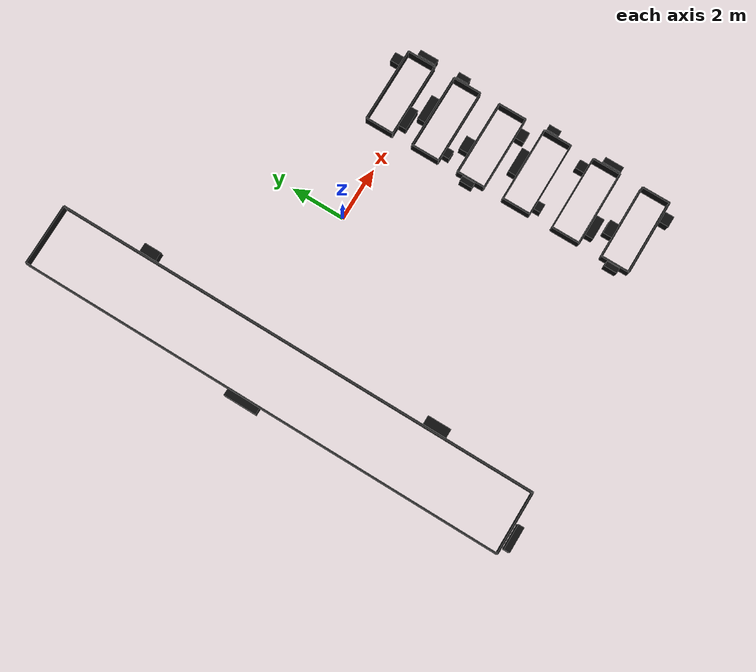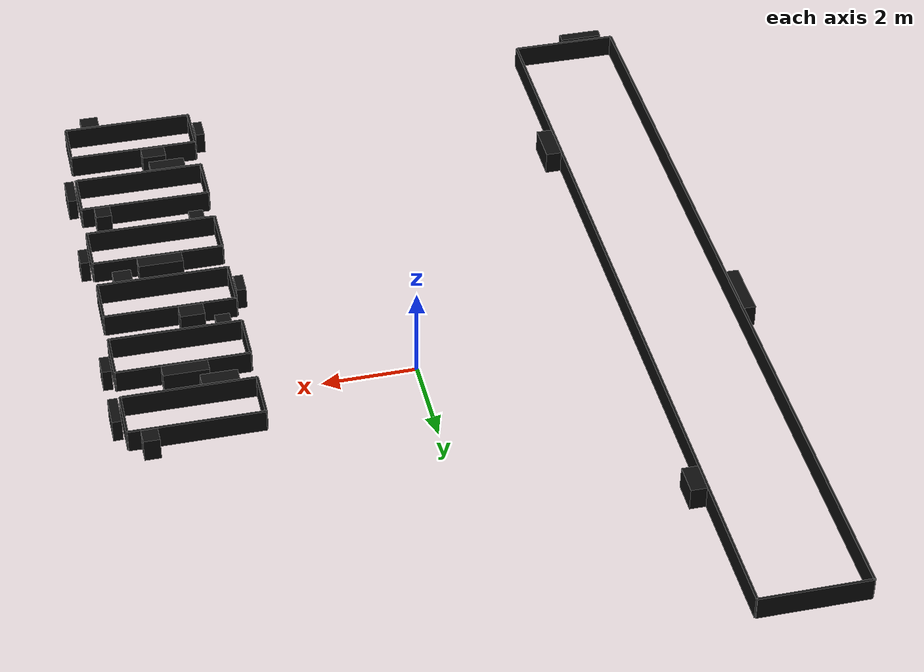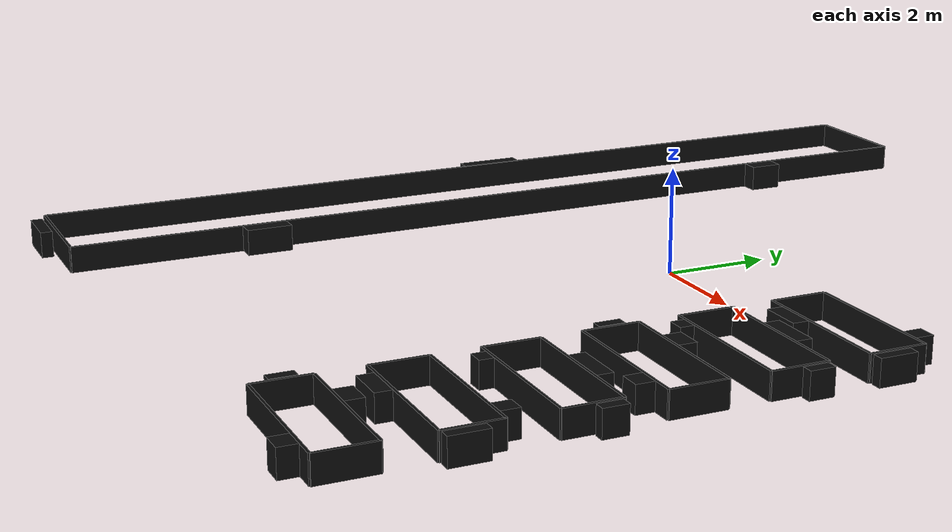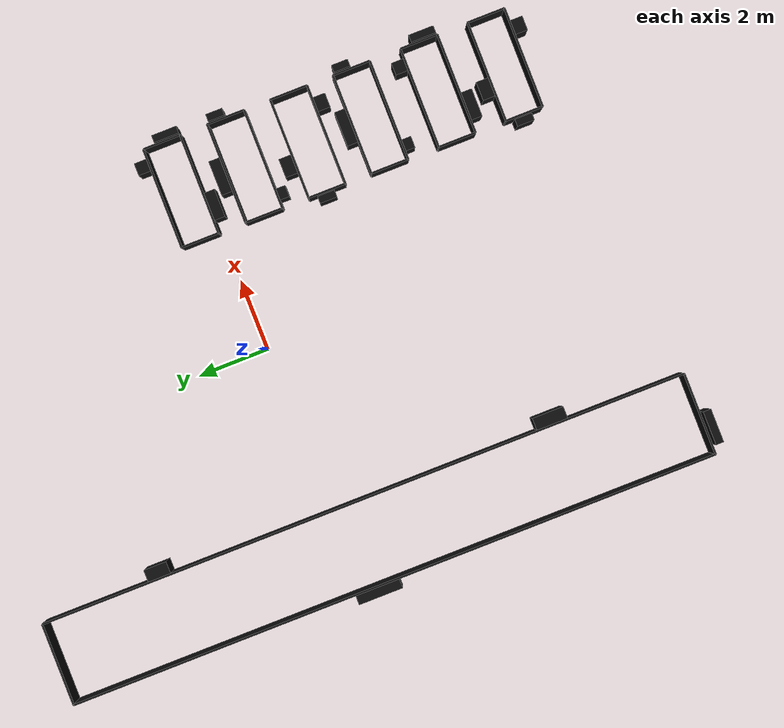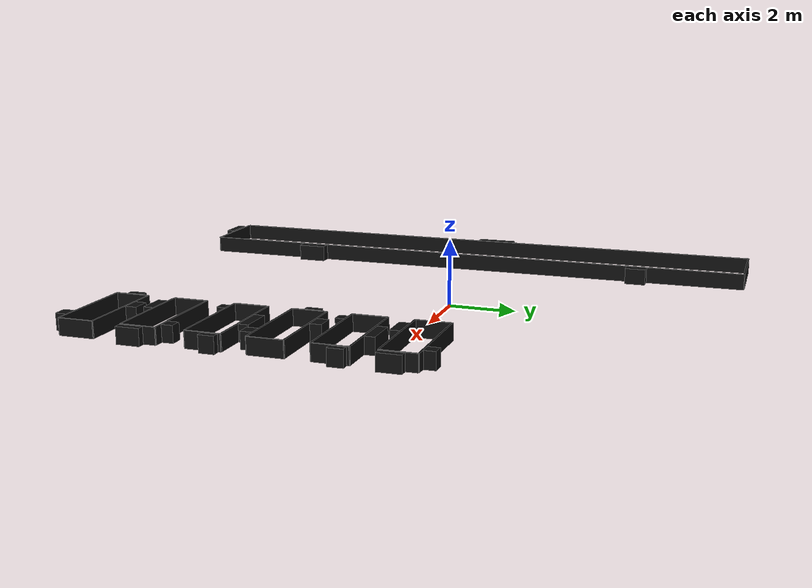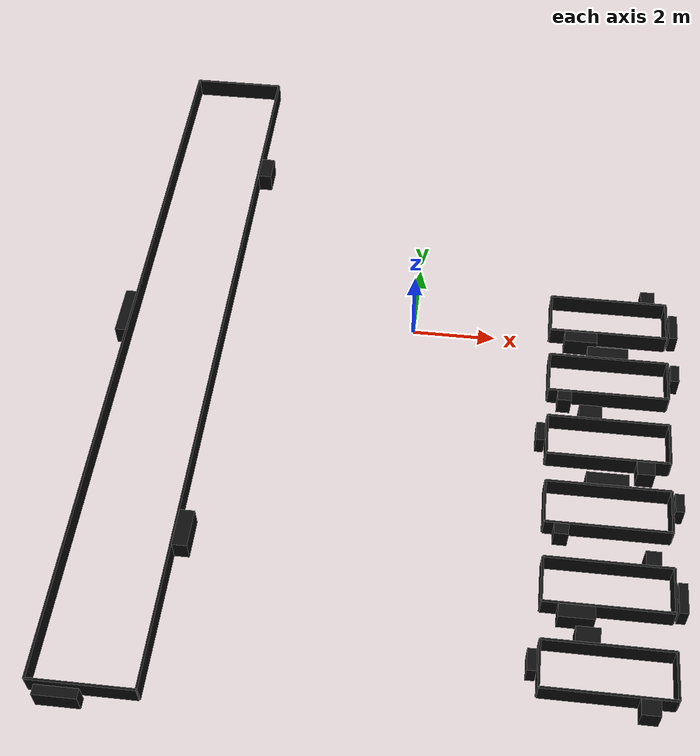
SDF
<sdf version="1.9">
 <world name="no_roof_small_warehouse">
  <plugin filename="gz-sim-physics-system" name="gz::sim::systems::Physics"/>
  <plugin filename="gz-sim-scene-broadcaster-system" name="gz::sim::systems::SceneBroadcaster"/>
  <plugin filename="gz-sim-user-commands-system" name="gz::sim::systems::UserCommands"/>
  <plugin filename="gz-sim-sensors-system" name="gz::sim::systems::Sensors">
   <render_engine>ogre2</render_engine>
  </plugin>
  <gravity>0 0 -9.8</gravity>
  <physics name="default_physics" type="ode">
   <max_step_size>0.01</max_step_size>
   <real_time_factor>1</real_time_factor>
   <real_time_update_rate>100</real_time_update_rate>
  </physics>
  <scene><ambient>0.4 0.4 0.4 1</ambient><background>0.7 0.7 0.7 1</background></scene>
  <model name="aws_robomaker_warehouse_ShelfF_01_001_lidar_blocker">
   <include><uri>model://warehouse_lidar_blocker_long_b</uri></include>
   <pose>-5.795143 -0.956635 0 0 0 0</pose>
  </model>
  <model name="aws_robomaker_warehouse_ShelfE_01_001_lidar_blocker">
   <include><uri>model://warehouse_lidar_blocker_short_b</uri></include>
   <pose>4.73156 0.57943 0 0 0 1.5708</pose>
  </model>
  <model name="aws_robomaker_warehouse_ShelfE_01_002_lidar_blocker">
   <include><uri>model://warehouse_lidar_blocker_short_c</uri></include>
   <pose>4.73156 -4.827049 0 0 0 1.5708</pose>
  </model>
  <model name="aws_robomaker_warehouse_ShelfE_01_003_lidar_blocker">
   <include><uri>model://warehouse_lidar_blocker_short</uri></include>
   <pose>4.73156 -8.6651 0 0 0 1.5708</pose>
  </model>
  <model name="aws_robomaker_warehouse_ShelfD_01_001_lidar_blocker">
   <include><uri>model://warehouse_lidar_blocker_short_c</uri></include>
   <pose>4.73156 -1.242668 0 0 0 1.5708</pose>
  </model>
  <model name="aws_robomaker_warehouse_ShelfD_01_002_lidar_blocker">
   <include><uri>model://warehouse_lidar_blocker_short</uri></include>
   <pose>4.73156 -3.038551 0 0 0 1.5708</pose>
  </model>
  <model name="aws_robomaker_warehouse_ShelfD_01_003_lidar_blocker">
   <include><uri>model://warehouse_lidar_blocker_short_b</uri></include>
   <pose>4.73156 -6.750542 0 0 0 1.5708</pose>
  </model>
  <light name="Warehouse_CeilingLight_003" type="point">
   <pose>0 0 9 0 0 0</pose>
   <diffuse>0.5 0.5 0.5 1</diffuse>
   <specular>0.2 0.2 0.2 1</specular>
   <attenuation>
    <range>80</range>
    <constant>0.3</constant>
    <linear>0.01</linear>
    <quadratic>0.001</quadratic>
   </attenuation>
   <direction>0.1 0.1 -1</direction>
  </light>
 </world>
</sdf>

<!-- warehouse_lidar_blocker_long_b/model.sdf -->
<sdf version="1.6">
  <model name="warehouse_lidar_blocker_long_b">
    <static>true</static>
    <link name="link">
      <collision name="x_min_lidar_rail_collision">
        <pose>-1.15 0 0.25 0 0 0</pose>
        <geometry><box><size>0.05 18.30 0.50</size></box></geometry>
      </collision>
      <collision name="x_max_lidar_rail_collision">
        <pose>1.15 0 0.25 0 0 0</pose>
        <geometry><box><size>0.05 18.30 0.50</size></box></geometry>
      </collision>
      <collision name="y_min_lidar_rail_collision">
        <pose>0 -9.15 0.25 0 0 0</pose>
        <geometry><box><size>2.30 0.05 0.50</size></box></geometry>
      </collision>
      <collision name="y_max_lidar_rail_collision">
        <pose>0 9.15 0.25 0 0 0</pose>
        <geometry><box><size>2.30 0.05 0.50</size></box></geometry>
      </collision>
      <collision name="east_marker_low_collision">
        <pose>1.34 -5.40 0.25 0 0 0</pose>
        <geometry><box><size>0.34 0.88 0.50</size></box></geometry>
      </collision>
      <collision name="west_marker_mid_collision">
        <pose>-1.30 0.50 0.25 0 0 0</pose>
        <geometry><box><size>0.26 1.24 0.50</size></box></geometry>
      </collision>
      <collision name="east_marker_high_collision">
        <pose>1.34 5.80 0.25 0 0 0</pose>
        <geometry><box><size>0.34 0.64 0.50</size></box></geometry>
      </collision>
      <collision name="south_marker_collision">
        <pose>-0.45 -9.36 0.25 0 0 0</pose>
        <geometry><box><size>0.94 0.22 0.50</size></box></geometry>
      </collision>
      <visual name="x_min_lidar_rail">
        <pose>-1.15 0 0.25 0 0 0</pose>
        <cast_shadows>false</cast_shadows>
        <geometry><box><size>0.05 18.30 0.50</size></box></geometry>
        <material><ambient>0.03 0.03 0.03 1</ambient><diffuse>0.05 0.05 0.05 1</diffuse></material>
      </visual>
      <visual name="x_max_lidar_rail">
        <pose>1.15 0 0.25 0 0 0</pose>
        <cast_shadows>false</cast_shadows>
        <geometry><box><size>0.05 18.30 0.50</size></box></geometry>
        <material><ambient>0.03 0.03 0.03 1</ambient><diffuse>0.05 0.05 0.05 1</diffuse></material>
      </visual>
      <visual name="y_min_lidar_rail">
        <pose>0 -9.15 0.25 0 0 0</pose>
        <cast_shadows>false</cast_shadows>
        <geometry><box><size>2.30 0.05 0.50</size></box></geometry>
        <material><ambient>0.03 0.03 0.03 1</ambient><diffuse>0.05 0.05 0.05 1</diffuse></material>
      </visual>
      <visual name="y_max_lidar_rail">
        <pose>0 9.15 0.25 0 0 0</pose>
        <cast_shadows>false</cast_shadows>
        <geometry><box><size>2.30 0.05 0.50</size></box></geometry>
        <material><ambient>0.03 0.03 0.03 1</ambient><diffuse>0.05 0.05 0.05 1</diffuse></material>
      </visual>
      <visual name="east_marker_low">
        <pose>1.34 -5.40 0.25 0 0 0</pose>
        <cast_shadows>false</cast_shadows>
        <geometry><box><size>0.34 0.88 0.50</size></box></geometry>
        <material><ambient>0.03 0.03 0.03 1</ambient><diffuse>0.05 0.05 0.05 1</diffuse></material>
      </visual>
      <visual name="west_marker_mid">
        <pose>-1.30 0.50 0.25 0 0 0</pose>
        <cast_shadows>false</cast_shadows>
        <geometry><box><size>0.26 1.24 0.50</size></box></geometry>
        <material><ambient>0.03 0.03 0.03 1</ambient><diffuse>0.05 0.05 0.05 1</diffuse></material>
      </visual>
      <visual name="east_marker_high">
        <pose>1.34 5.80 0.25 0 0 0</pose>
        <cast_shadows>false</cast_shadows>
        <geometry><box><size>0.34 0.64 0.50</size></box></geometry>
        <material><ambient>0.03 0.03 0.03 1</ambient><diffuse>0.05 0.05 0.05 1</diffuse></material>
      </visual>
      <visual name="south_marker">
        <pose>-0.45 -9.36 0.25 0 0 0</pose>
        <cast_shadows>false</cast_shadows>
        <geometry><box><size>0.94 0.22 0.50</size></box></geometry>
        <material><ambient>0.03 0.03 0.03 1</ambient><diffuse>0.05 0.05 0.05 1</diffuse></material>
      </visual>
    </link>
  </model>
</sdf>

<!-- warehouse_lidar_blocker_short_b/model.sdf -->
<sdf version="1.6">
  <model name="warehouse_lidar_blocker_short_b">
    <static>true</static>
    <link name="link">
      <collision name="x_min_lidar_rail_collision">
        <pose>-0.525 0 0.25 0 0 0</pose>
        <geometry><box><size>0.05 2.80 0.50</size></box></geometry>
      </collision>
      <collision name="x_max_lidar_rail_collision">
        <pose>0.525 0 0.25 0 0 0</pose>
        <geometry><box><size>0.05 2.80 0.50</size></box></geometry>
      </collision>
      <collision name="y_min_lidar_rail_collision">
        <pose>0 -1.40 0.25 0 0 0</pose>
        <geometry><box><size>1.05 0.05 0.50</size></box></geometry>
      </collision>
      <collision name="y_max_lidar_rail_collision">
        <pose>0 1.40 0.25 0 0 0</pose>
        <geometry><box><size>1.05 0.05 0.50</size></box></geometry>
      </collision>
      <collision name="west_marker_collision">
        <pose>-0.70 0.66 0.25 0 0 0</pose>
        <geometry><box><size>0.30 0.78 0.50</size></box></geometry>
      </collision>
      <collision name="south_marker_collision">
        <pose>-0.16 -1.56 0.25 0 0 0</pose>
        <geometry><box><size>0.70 0.20 0.50</size></box></geometry>
      </collision>
      <collision name="east_marker_collision">
        <pose>0.72 -0.96 0.25 0 0 0</pose>
        <geometry><box><size>0.34 0.34 0.50</size></box></geometry>
      </collision>
      <visual name="x_min_lidar_rail">
        <pose>-0.525 0 0.25 0 0 0</pose>
        <cast_shadows>false</cast_shadows>
        <geometry><box><size>0.05 2.80 0.50</size></box></geometry>
        <material><ambient>0.03 0.03 0.03 1</ambient><diffuse>0.05 0.05 0.05 1</diffuse></material>
      </visual>
      <visual name="x_max_lidar_rail">
        <pose>0.525 0 0.25 0 0 0</pose>
        <cast_shadows>false</cast_shadows>
        <geometry><box><size>0.05 2.80 0.50</size></box></geometry>
        <material><ambient>0.03 0.03 0.03 1</ambient><diffuse>0.05 0.05 0.05 1</diffuse></material>
      </visual>
      <visual name="y_min_lidar_rail">
        <pose>0 -1.40 0.25 0 0 0</pose>
        <cast_shadows>false</cast_shadows>
        <geometry><box><size>1.05 0.05 0.50</size></box></geometry>
        <material><ambient>0.03 0.03 0.03 1</ambient><diffuse>0.05 0.05 0.05 1</diffuse></material>
      </visual>
      <visual name="y_max_lidar_rail">
        <pose>0 1.40 0.25 0 0 0</pose>
        <cast_shadows>false</cast_shadows>
        <geometry><box><size>1.05 0.05 0.50</size></box></geometry>
        <material><ambient>0.03 0.03 0.03 1</ambient><diffuse>0.05 0.05 0.05 1</diffuse></material>
      </visual>
      <visual name="west_marker">
        <pose>-0.70 0.66 0.25 0 0 0</pose>
        <cast_shadows>false</cast_shadows>
        <geometry><box><size>0.30 0.78 0.50</size></box></geometry>
        <material><ambient>0.03 0.03 0.03 1</ambient><diffuse>0.05 0.05 0.05 1</diffuse></material>
      </visual>
      <visual name="south_marker">
        <pose>-0.16 -1.56 0.25 0 0 0</pose>
        <cast_shadows>false</cast_shadows>
        <geometry><box><size>0.70 0.20 0.50</size></box></geometry>
        <material><ambient>0.03 0.03 0.03 1</ambient><diffuse>0.05 0.05 0.05 1</diffuse></material>
      </visual>
      <visual name="east_marker">
        <pose>0.72 -0.96 0.25 0 0 0</pose>
        <cast_shadows>false</cast_shadows>
        <geometry><box><size>0.34 0.34 0.50</size></box></geometry>
        <material><ambient>0.03 0.03 0.03 1</ambient><diffuse>0.05 0.05 0.05 1</diffuse></material>
      </visual>
    </link>
  </model>
</sdf>

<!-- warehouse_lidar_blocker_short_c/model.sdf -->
<sdf version="1.6">
  <model name="warehouse_lidar_blocker_short_c">
    <static>true</static>
    <link name="link">
      <collision name="x_min_lidar_rail_collision">
        <pose>-0.525 0 0.25 0 0 0</pose>
        <geometry><box><size>0.05 2.80 0.50</size></box></geometry>
      </collision>
      <collision name="x_max_lidar_rail_collision">
        <pose>0.525 0 0.25 0 0 0</pose>
        <geometry><box><size>0.05 2.80 0.50</size></box></geometry>
      </collision>
      <collision name="y_min_lidar_rail_collision">
        <pose>0 -1.40 0.25 0 0 0</pose>
        <geometry><box><size>1.05 0.05 0.50</size></box></geometry>
      </collision>
      <collision name="y_max_lidar_rail_collision">
        <pose>0 1.40 0.25 0 0 0</pose>
        <geometry><box><size>1.05 0.05 0.50</size></box></geometry>
      </collision>
      <collision name="east_marker_collision">
        <pose>0.70 0.02 0.25 0 0 0</pose>
        <geometry><box><size>0.30 0.96 0.50</size></box></geometry>
      </collision>
      <collision name="west_marker_collision">
        <pose>-0.68 1.02 0.25 0 0 0</pose>
        <geometry><box><size>0.26 0.32 0.50</size></box></geometry>
      </collision>
      <collision name="south_marker_collision">
        <pose>0.24 -1.56 0.25 0 0 0</pose>
        <geometry><box><size>0.46 0.20 0.50</size></box></geometry>
      </collision>
      <visual name="x_min_lidar_rail">
        <pose>-0.525 0 0.25 0 0 0</pose>
        <cast_shadows>false</cast_shadows>
        <geometry><box><size>0.05 2.80 0.50</size></box></geometry>
        <material><ambient>0.03 0.03 0.03 1</ambient><diffuse>0.05 0.05 0.05 1</diffuse></material>
      </visual>
      <visual name="x_max_lidar_rail">
        <pose>0.525 0 0.25 0 0 0</pose>
        <cast_shadows>false</cast_shadows>
        <geometry><box><size>0.05 2.80 0.50</size></box></geometry>
        <material><ambient>0.03 0.03 0.03 1</ambient><diffuse>0.05 0.05 0.05 1</diffuse></material>
      </visual>
      <visual name="y_min_lidar_rail">
        <pose>0 -1.40 0.25 0 0 0</pose>
        <cast_shadows>false</cast_shadows>
        <geometry><box><size>1.05 0.05 0.50</size></box></geometry>
        <material><ambient>0.03 0.03 0.03 1</ambient><diffuse>0.05 0.05 0.05 1</diffuse></material>
      </visual>
      <visual name="y_max_lidar_rail">
        <pose>0 1.40 0.25 0 0 0</pose>
        <cast_shadows>false</cast_shadows>
        <geometry><box><size>1.05 0.05 0.50</size></box></geometry>
        <material><ambient>0.03 0.03 0.03 1</ambient><diffuse>0.05 0.05 0.05 1</diffuse></material>
      </visual>
      <visual name="east_marker">
        <pose>0.70 0.02 0.25 0 0 0</pose>
        <cast_shadows>false</cast_shadows>
        <geometry><box><size>0.30 0.96 0.50</size></box></geometry>
        <material><ambient>0.03 0.03 0.03 1</ambient><diffuse>0.05 0.05 0.05 1</diffuse></material>
      </visual>
      <visual name="west_marker">
        <pose>-0.68 1.02 0.25 0 0 0</pose>
        <cast_shadows>false</cast_shadows>
        <geometry><box><size>0.26 0.32 0.50</size></box></geometry>
        <material><ambient>0.03 0.03 0.03 1</ambient><diffuse>0.05 0.05 0.05 1</diffuse></material>
      </visual>
      <visual name="south_marker">
        <pose>0.24 -1.56 0.25 0 0 0</pose>
        <cast_shadows>false</cast_shadows>
        <geometry><box><size>0.46 0.20 0.50</size></box></geometry>
        <material><ambient>0.03 0.03 0.03 1</ambient><diffuse>0.05 0.05 0.05 1</diffuse></material>
      </visual>
    </link>
  </model>
</sdf>

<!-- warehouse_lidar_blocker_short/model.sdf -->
<sdf version="1.6">
  <model name="warehouse_lidar_blocker_short">
    <static>true</static>
    <link name="link">
      <!-- Keep the shelf footprint lidar-visible, but put the distinguishing
           features on the OUTSIDE of the rack so they are actually visible to
           the scanner from the aisle. -->
      <collision name="x_min_lidar_rail_collision">
        <pose>-0.525 0 0.25 0 0 0</pose>
        <geometry>
          <box>
            <size>0.05 2.80 0.50</size>
          </box>
        </geometry>
      </collision>
      <collision name="x_max_lidar_rail_collision">
        <pose>0.525 0 0.25 0 0 0</pose>
        <geometry>
          <box>
            <size>0.05 2.80 0.50</size>
          </box>
        </geometry>
      </collision>
      <collision name="y_min_lidar_rail_collision">
        <pose>0 -1.40 0.25 0 0 0</pose>
        <geometry>
          <box>
            <size>1.05 0.05 0.50</size>
          </box>
        </geometry>
      </collision>
      <collision name="y_max_lidar_rail_collision">
        <pose>0 1.40 0.25 0 0 0</pose>
        <geometry>
          <box>
            <size>1.05 0.05 0.50</size>
          </box>
        </geometry>
      </collision>
      <collision name="west_marker_collision">
        <pose>-0.72 -0.84 0.25 0 0 0</pose>
        <geometry>
          <box>
            <size>0.34 0.40 0.50</size>
          </box>
        </geometry>
      </collision>
      <collision name="east_marker_collision">
        <pose>0.72 0.42 0.25 0 0 0</pose>
        <geometry>
          <box>
            <size>0.34 0.52 0.50</size>
          </box>
        </geometry>
      </collision>
      <collision name="north_marker_collision">
        <pose>0.05 1.55 0.25 0 0 0</pose>
        <geometry>
          <box>
            <size>0.48 0.20 0.50</size>
          </box>
        </geometry>
      </collision>
      <visual name="x_min_lidar_rail">
        <pose>-0.525 0 0.25 0 0 0</pose>
        <cast_shadows>false</cast_shadows>
        <geometry>
          <box>
            <size>0.05 2.80 0.50</size>
          </box>
        </geometry>
        <material>
          <ambient>0.03 0.03 0.03 1</ambient>
          <diffuse>0.05 0.05 0.05 1</diffuse>
        </material>
      </visual>
      <visual name="x_max_lidar_rail">
        <pose>0.525 0 0.25 0 0 0</pose>
        <cast_shadows>false</cast_shadows>
        <geometry>
          <box>
            <size>0.05 2.80 0.50</size>
          </box>
        </geometry>
        <material>
          <ambient>0.03 0.03 0.03 1</ambient>
          <diffuse>0.05 0.05 0.05 1</diffuse>
        </material>
      </visual>
      <visual name="y_min_lidar_rail">
        <pose>0 -1.40 0.25 0 0 0</pose>
        <cast_shadows>false</cast_shadows>
        <geometry>
          <box>
            <size>1.05 0.05 0.50</size>
          </box>
        </geometry>
        <material>
          <ambient>0.03 0.03 0.03 1</ambient>
          <diffuse>0.05 0.05 0.05 1</diffuse>
        </material>
      </visual>
      <visual name="y_max_lidar_rail">
        <pose>0 1.40 0.25 0 0 0</pose>
        <cast_shadows>false</cast_shadows>
        <geometry>
          <box>
            <size>1.05 0.05 0.50</size>
          </box>
        </geometry>
        <material>
          <ambient>0.03 0.03 0.03 1</ambient>
          <diffuse>0.05 0.05 0.05 1</diffuse>
        </material>
      </visual>
      <visual name="west_marker">
        <pose>-0.72 -0.84 0.25 0 0 0</pose>
        <cast_shadows>false</cast_shadows>
        <geometry>
          <box>
            <size>0.34 0.40 0.50</size>
          </box>
        </geometry>
        <material>
          <ambient>0.03 0.03 0.03 1</ambient>
          <diffuse>0.05 0.05 0.05 1</diffuse>
        </material>
      </visual>
      <visual name="east_marker">
        <pose>0.72 0.42 0.25 0 0 0</pose>
        <cast_shadows>false</cast_shadows>
        <geometry>
          <box>
            <size>0.34 0.52 0.50</size>
          </box>
        </geometry>
        <material>
          <ambient>0.03 0.03 0.03 1</ambient>
          <diffuse>0.05 0.05 0.05 1</diffuse>
        </material>
      </visual>
      <visual name="north_marker">
        <pose>0.05 1.55 0.25 0 0 0</pose>
        <cast_shadows>false</cast_shadows>
        <geometry>
          <box>
            <size>0.48 0.20 0.50</size>
          </box>
        </geometry>
        <material>
          <ambient>0.03 0.03 0.03 1</ambient>
          <diffuse>0.05 0.05 0.05 1</diffuse>
        </material>
      </visual>
    </link>
  </model>
</sdf>
